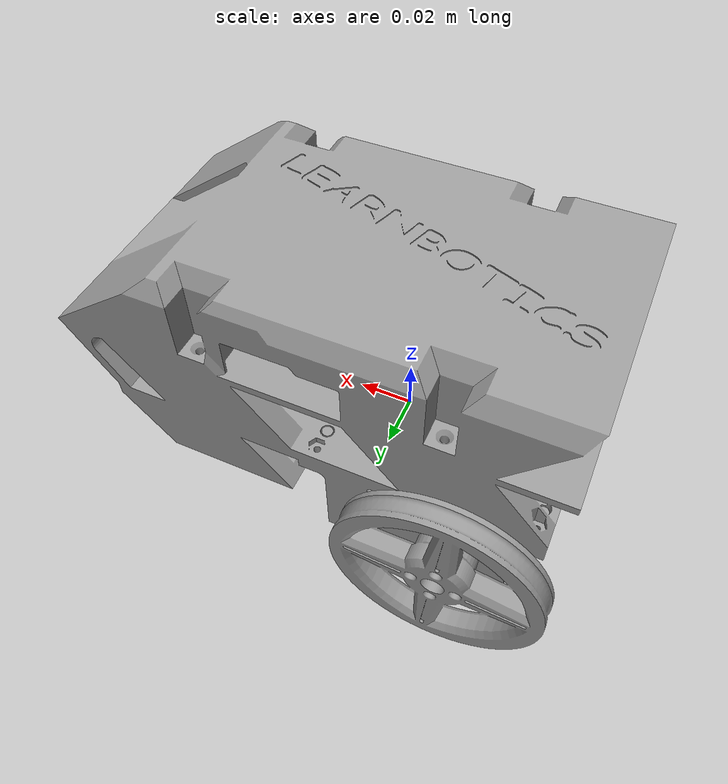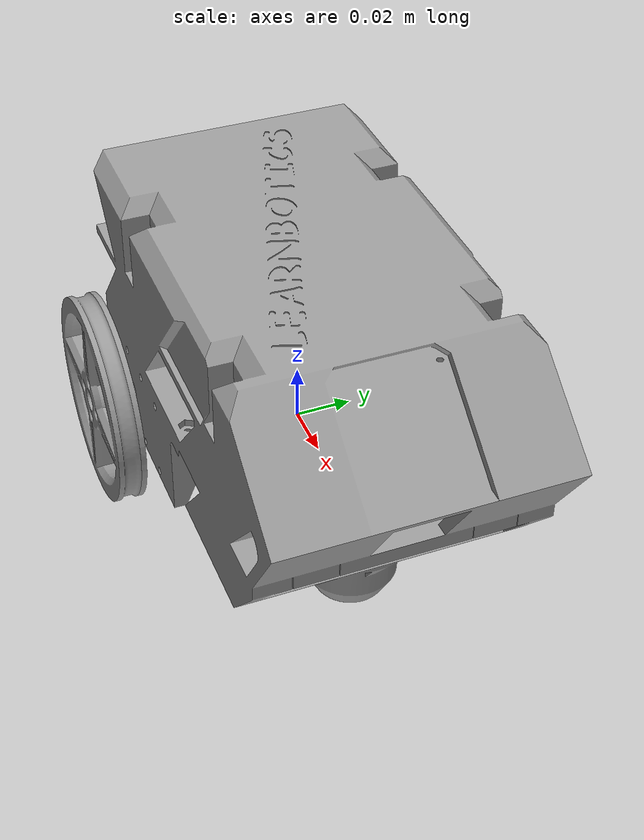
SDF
<?xml version='1.0'?>
<sdf version='1.6'>
  <model name='learnbotics2'>
    <link name='link_0'>
      <inertial>
        <mass>0.326976</mass>
        <inertia>
          <ixx>0.00063319</ixx>
          <ixy>0</ixy>
          <ixz>5.131e-05</ixz>
          <iyy>0.00102937</iyy>
          <iyz>8e-07</iyz>
          <izz>0.00120174</izz>
        </inertia>
        <pose frame=''>0 0 0 0 -0 0</pose>
      </inertial>
      <pose frame=''>0.021748 -3.7e-05 0.033385 0 -0 0</pose>
      <gravity>1</gravity>
      <self_collide>0</self_collide>
      <kinematic>0</kinematic>
      <enable_wind>0</enable_wind>
      <visual name='visual'>
        <pose frame=''>0 0 0 0 -0 0</pose>
        <geometry>
          <mesh>
            <uri>/home/tecchio/code/catkin_learnbotics/src/learnrobotics/model/stl/modified/complete_robot.stl</uri>
            <scale>1 1 1</scale>
          </mesh>
        </geometry>
        <material>
          <lighting>1</lighting>
          <script>
            <uri>file://media/materials/scripts/gazebo.material</uri>
            <name>Gazebo/Grey</name>
          </script>
          <shader type='vertex'>
            <normal_map>__default__</normal_map>
          </shader>
          <ambient>0.3 0.3 0.3 1</ambient>
          <diffuse>0.7 0.7 0.7 1</diffuse>
          <specular>0.01 0.01 0.01 1</specular>
          <emissive>0 0 0 1</emissive>
        </material>
        <transparency>0</transparency>
        <cast_shadows>1</cast_shadows>
      </visual>
      <collision name='collision'>
        <laser_retro>0</laser_retro>
        <max_contacts>10</max_contacts>
        <pose frame=''>0 0 0 0 -0 0</pose>
        <geometry>
          <mesh>
            <uri>/home/tecchio/code/catkin_learnbotics/src/learnrobotics/model/stl/modified/complete_robot.stl</uri>
            <scale>1 1 1</scale>
          </mesh>
        </geometry>
        <surface>
          <friction>
            <ode>
              <mu>1</mu>
              <mu2>1</mu2>
              <fdir1>0 0 0</fdir1>
              <slip1>0</slip1>
              <slip2>0</slip2>
            </ode>
            <torsional>
              <coefficient>1</coefficient>
              <patch_radius>0</patch_radius>
              <surface_radius>0</surface_radius>
              <use_patch_radius>1</use_patch_radius>
              <ode>
                <slip>0</slip>
              </ode>
            </torsional>
          </friction>
          <bounce>
            <restitution_coefficient>0</restitution_coefficient>
            <threshold>1e+06</threshold>
          </bounce>
          <contact>
            <collide_without_contact>0</collide_without_contact>
            <collide_without_contact_bitmask>1</collide_without_contact_bitmask>
            <collide_bitmask>1</collide_bitmask>
            <ode>
              <soft_cfm>0</soft_cfm>
              <soft_erp>0.2</soft_erp>
              <kp>1e+13</kp>
              <kd>1</kd>
              <max_vel>0.01</max_vel>
              <min_depth>0</min_depth>
            </ode>
            <bullet>
              <split_impulse>1</split_impulse>
              <split_impulse_penetration_threshold>-0.01</split_impulse_penetration_threshold>
              <soft_cfm>0</soft_cfm>
              <soft_erp>0.2</soft_erp>
              <kp>1e+13</kp>
              <kd>1</kd>
            </bullet>
          </contact>
        </surface>
      </collision>
    </link>
    <link name='link_1'>
      <inertial>
        <mass>0.00439458</mass>
        <inertia>
          <ixx>1.8e-07</ixx>
          <ixy>0</ixy>
          <ixz>0</ixz>
          <iyy>1.8e-07</iyy>
          <iyz>0</iyz>
          <izz>1.8e-07</izz>
        </inertia>
        <pose frame=''>0 0 0 0 -0 0</pose>
      </inertial>
      <pose frame=''>0.050011 0.000113 -0.030747 0 -0 0</pose>
      <gravity>1</gravity>
      <self_collide>0</self_collide>
      <kinematic>0</kinematic>
      <enable_wind>0</enable_wind>
      <visual name='visual'>
        <pose frame=''>0 0 0 0 -0 0</pose>
        <geometry>
          <mesh>
            <uri>/home/tecchio/code/catkin_learnbotics/src/learnrobotics/model/stl/modified/EsferaNoCentro.stl</uri>
            <scale>1 1 1</scale>
          </mesh>
        </geometry>
        <material>
          <lighting>1</lighting>
          <script>
            <uri>file://media/materials/scripts/gazebo.material</uri>
            <name>Gazebo/Grey</name>
          </script>
          <shader type='vertex'>
            <normal_map>__default__</normal_map>
          </shader>
          <ambient>0.3 0.3 0.3 1</ambient>
          <diffuse>0.7 0.7 0.7 1</diffuse>
          <specular>0.01 0.01 0.01 1</specular>
          <emissive>0 0 0 1</emissive>
        </material>
        <transparency>0</transparency>
        <cast_shadows>1</cast_shadows>
      </visual>
      <collision name='collision'>
        <laser_retro>0</laser_retro>
        <max_contacts>10</max_contacts>
        <pose frame=''>0 0 0 0 -0 0</pose>
        <geometry>
          <mesh>
            <uri>/home/tecchio/code/catkin_learnbotics/src/learnrobotics/model/stl/modified/EsferaNoCentro.stl</uri>
            <scale>1 1 1</scale>
          </mesh>
        </geometry>
        <surface>
          <friction>
            <ode>
              <mu>1</mu>
              <mu2>1</mu2>
              <fdir1>0 0 0</fdir1>
              <slip1>0</slip1>
              <slip2>0</slip2>
            </ode>
            <torsional>
              <coefficient>1</coefficient>
              <patch_radius>0</patch_radius>
              <surface_radius>0</surface_radius>
              <use_patch_radius>1</use_patch_radius>
              <ode>
                <slip>0</slip>
              </ode>
            </torsional>
          </friction>
          <bounce>
            <restitution_coefficient>0</restitution_coefficient>
            <threshold>1e+06</threshold>
          </bounce>
          <contact>
            <collide_without_contact>0</collide_without_contact>
            <collide_without_contact_bitmask>1</collide_without_contact_bitmask>
            <collide_bitmask>1</collide_bitmask>
            <ode>
              <soft_cfm>0</soft_cfm>
              <soft_erp>0.2</soft_erp>
              <kp>1e+13</kp>
              <kd>1</kd>
              <max_vel>0.01</max_vel>
              <min_depth>0</min_depth>
            </ode>
            <bullet>
              <split_impulse>1</split_impulse>
              <split_impulse_penetration_threshold>-0.01</split_impulse_penetration_threshold>
              <soft_cfm>0</soft_cfm>
              <soft_erp>0.2</soft_erp>
              <kp>1e+13</kp>
              <kd>1</kd>
            </bullet>
          </contact>
        </surface>
      </collision>
    </link>
    <link name='link_2'>
      <inertial>
        <mass>0.0270542</mass>
        <inertia>
          <ixx>1.095e-05</ixx>
          <ixy>0</ixy>
          <ixz>0</ixz>
          <iyy>2.138e-05</iyy>
          <iyz>0</iyz>
          <izz>1.095e-05</izz>
        </inertia>
        <pose frame=''>0 0 0 0 -0 0</pose>
      </inertial>
      <pose frame=''>-0.035879 -0.06155 -0.001319 1.5708 -0 0</pose>
      <gravity>1</gravity>
      <self_collide>0</self_collide>
      <kinematic>0</kinematic>
      <enable_wind>0</enable_wind>
      <visual name='visual'>
        <pose frame=''>0 0 0 -1.5708 0 0</pose>
        <geometry>
          <mesh>
            <uri>/home/tecchio/code/catkin_learnbotics/src/learnrobotics/model/stl/modified/RodaNoCentro.stl</uri>
            <scale>1 1 1</scale>
          </mesh>
        </geometry>
        <material>
          <lighting>1</lighting>
          <script>
            <uri>file://media/materials/scripts/gazebo.material</uri>
            <name>Gazebo/Grey</name>
          </script>
          <shader type='vertex'>
            <normal_map>__default__</normal_map>
          </shader>
          <ambient>0.3 0.3 0.3 1</ambient>
          <diffuse>0.7 0.7 0.7 1</diffuse>
          <specular>0.01 0.01 0.01 1</specular>
          <emissive>0 0 0 1</emissive>
        </material>
        <transparency>0</transparency>
        <cast_shadows>1</cast_shadows>
      </visual>
      <collision name='collision'>
        <laser_retro>0</laser_retro>
        <max_contacts>10</max_contacts>
        <pose frame=''>0 0 0 -1.5708 0 0</pose>
        <geometry>
          <mesh>
            <uri>/home/tecchio/code/catkin_learnbotics/src/learnrobotics/model/stl/modified/RodaNoCentro.stl</uri>
            <scale>1 1 1</scale>
          </mesh>
        </geometry>
        <surface>
          <friction>
            <ode>
              <mu>1</mu>
              <mu2>1</mu2>
              <fdir1>0 0 0</fdir1>
              <slip1>0</slip1>
              <slip2>0</slip2>
            </ode>
            <torsional>
              <coefficient>1</coefficient>
              <patch_radius>0</patch_radius>
              <surface_radius>0</surface_radius>
              <use_patch_radius>1</use_patch_radius>
              <ode>
                <slip>0</slip>
              </ode>
            </torsional>
          </friction>
          <bounce>
            <restitution_coefficient>0</restitution_coefficient>
            <threshold>1e+06</threshold>
          </bounce>
          <contact>
            <collide_without_contact>0</collide_without_contact>
            <collide_without_contact_bitmask>1</collide_without_contact_bitmask>
            <collide_bitmask>1</collide_bitmask>
            <ode>
              <soft_cfm>0</soft_cfm>
              <soft_erp>0.2</soft_erp>
              <kp>1e+13</kp>
              <kd>1</kd>
              <max_vel>0.01</max_vel>
              <min_depth>0</min_depth>
            </ode>
            <bullet>
              <split_impulse>1</split_impulse>
              <split_impulse_penetration_threshold>-0.01</split_impulse_penetration_threshold>
              <soft_cfm>0</soft_cfm>
              <soft_erp>0.2</soft_erp>
              <kp>1e+13</kp>
              <kd>1</kd>
            </bullet>
          </contact>
        </surface>
      </collision>
    </link>
    <link name='link_3'>
      <inertial>
        <mass>0.0270542</mass>
        <inertia>
          <ixx>1.095e-05</ixx>
          <ixy>0</ixy>
          <ixz>0</ixz>
          <iyy>2.138e-05</iyy>
          <iyz>0</iyz>
          <izz>1.095e-05</izz>
        </inertia>
        <pose frame=''>0 0 0 0 -0 0</pose>
      </inertial>
      <pose frame=''>-0.035879 0.061475 -0.001319 1.5708 -0 0</pose>
      <gravity>1</gravity>
      <self_collide>0</self_collide>
      <kinematic>0</kinematic>
      <enable_wind>0</enable_wind>
      <visual name='visual'>
        <pose frame=''>0 0 0 -1.5708 0 0</pose>
        <geometry>
          <mesh>
            <uri>/home/tecchio/code/catkin_learnbotics/src/learnrobotics/model/stl/modified/RodaNoCentroEspelhada.stl</uri>
            <scale>1 1 1</scale>
          </mesh>
        </geometry>
        <material>
          <lighting>1</lighting>
          <script>
            <uri>file://media/materials/scripts/gazebo.material</uri>
            <name>Gazebo/Grey</name>
          </script>
          <shader type='vertex'>
            <normal_map>__default__</normal_map>
          </shader>
          <ambient>0.3 0.3 0.3 1</ambient>
          <diffuse>0.7 0.7 0.7 1</diffuse>
          <specular>0.01 0.01 0.01 1</specular>
          <emissive>0 0 0 1</emissive>
        </material>
        <transparency>0</transparency>
        <cast_shadows>1</cast_shadows>
      </visual>
      <collision name='collision'>
        <laser_retro>0</laser_retro>
        <max_contacts>10</max_contacts>
        <pose frame=''>0 0 0 -1.5708 0 0</pose>
        <geometry>
          <mesh>
            <uri>/home/tecchio/code/catkin_learnbotics/src/learnrobotics/model/stl/modified/RodaNoCentroEspelhada.stl</uri>
            <scale>1 1 1</scale>
          </mesh>
        </geometry>
        <surface>
          <friction>
            <ode>
              <mu>1</mu>
              <mu2>1</mu2>
              <fdir1>0 0 0</fdir1>
              <slip1>0</slip1>
              <slip2>0</slip2>
            </ode>
            <torsional>
              <coefficient>1</coefficient>
              <patch_radius>0</patch_radius>
              <surface_radius>0</surface_radius>
              <use_patch_radius>1</use_patch_radius>
              <ode>
                <slip>0</slip>
              </ode>
            </torsional>
          </friction>
          <bounce>
            <restitution_coefficient>0</restitution_coefficient>
            <threshold>1e+06</threshold>
          </bounce>
          <contact>
            <collide_without_contact>0</collide_without_contact>
            <collide_without_contact_bitmask>1</collide_without_contact_bitmask>
            <collide_bitmask>1</collide_bitmask>
            <ode>
              <soft_cfm>0</soft_cfm>
              <soft_erp>0.2</soft_erp>
              <kp>1e+13</kp>
              <kd>1</kd>
              <max_vel>0.01</max_vel>
              <min_depth>0</min_depth>
            </ode>
            <bullet>
              <split_impulse>1</split_impulse>
              <split_impulse_penetration_threshold>-0.01</split_impulse_penetration_threshold>
              <soft_cfm>0</soft_cfm>
              <soft_erp>0.2</soft_erp>
              <kp>1e+13</kp>
              <kd>1</kd>
            </bullet>
          </contact>
        </surface>
      </collision>
    </link>
    <joint name='link_0_JOINT_0' type='ball'>
      <parent>link_0</parent>
      <child>link_1</child>
      <pose frame=''>0 0 0 0 -0 0</pose>
      <physics>
        <ode>
          <limit>
            <cfm>0</cfm>
            <erp>0.2</erp>
          </limit>
          <suspension>
            <cfm>0</cfm>
            <erp>0.2</erp>
          </suspension>
        </ode>
      </physics>
    </joint>
    <joint name='link_0_JOINT_1' type='revolute'>
      <parent>link_0</parent>
      <child>link_2</child>
      <pose frame=''>0 0 0 0 -0 0</pose>
      <axis>
        <xyz>0 1 0</xyz>
        <use_parent_model_frame>0</use_parent_model_frame>
        <limit>
          <lower>-1.79769e+308</lower>
          <upper>1.79769e+308</upper>
          <effort>-1</effort>
          <velocity>-1</velocity>
        </limit>
        <dynamics>
          <spring_reference>0</spring_reference>
          <spring_stiffness>0</spring_stiffness>
          <damping>0</damping>
          <friction>0</friction>
        </dynamics>
      </axis>
      <physics>
        <ode>
          <limit>
            <cfm>0</cfm>
            <erp>0.2</erp>
          </limit>
          <suspension>
            <cfm>0</cfm>
            <erp>0.2</erp>
          </suspension>
        </ode>
      </physics>
    </joint>
    <joint name='link_0_JOINT_2' type='revolute'>
      <parent>link_0</parent>
      <child>link_3</child>
      <pose frame=''>0 0 0 0 -0 0</pose>
      <axis>
        <xyz>0 1 0</xyz>
        <use_parent_model_frame>0</use_parent_model_frame>
        <limit>
          <lower>-1.79769e+308</lower>
          <upper>1.79769e+308</upper>
          <effort>-1</effort>
          <velocity>-1</velocity>
        </limit>
        <dynamics>
          <spring_reference>0</spring_reference>
          <spring_stiffness>0</spring_stiffness>
          <damping>0</damping>
          <friction>0</friction>
        </dynamics>
      </axis>
      <physics>
        <ode>
          <limit>
            <cfm>0</cfm>
            <erp>0.2</erp>
          </limit>
          <suspension>
            <cfm>0</cfm>
            <erp>0.2</erp>
          </suspension>
        </ode>
      </physics>
    </joint>
    <static>0</static>
    <allow_auto_disable>1</allow_auto_disable>
  </model>
</sdf>
